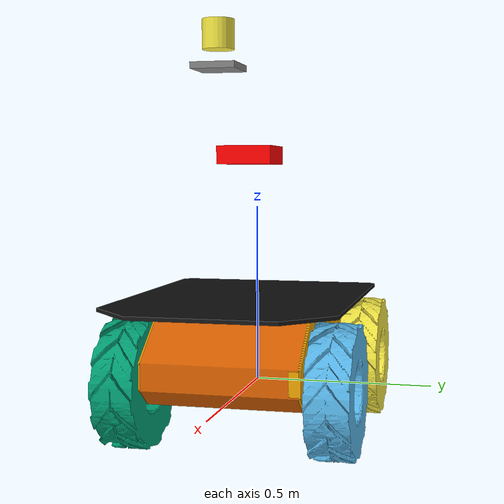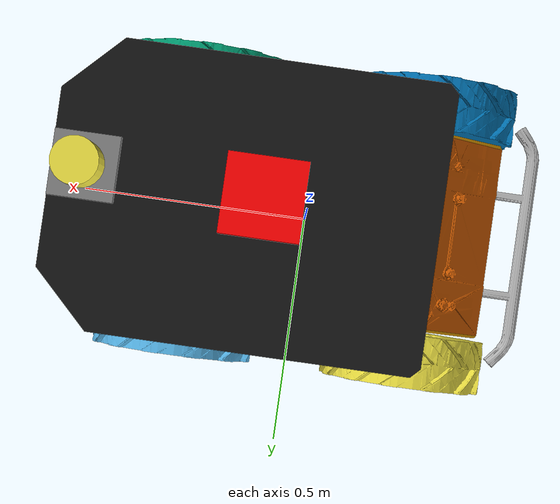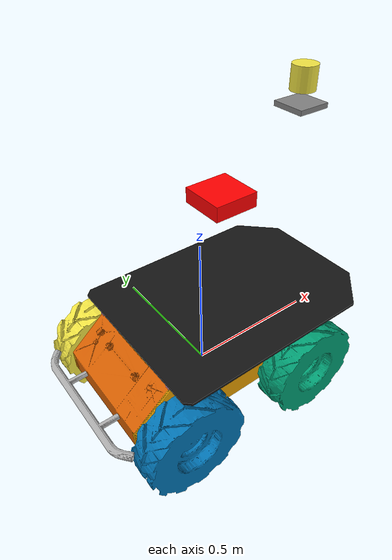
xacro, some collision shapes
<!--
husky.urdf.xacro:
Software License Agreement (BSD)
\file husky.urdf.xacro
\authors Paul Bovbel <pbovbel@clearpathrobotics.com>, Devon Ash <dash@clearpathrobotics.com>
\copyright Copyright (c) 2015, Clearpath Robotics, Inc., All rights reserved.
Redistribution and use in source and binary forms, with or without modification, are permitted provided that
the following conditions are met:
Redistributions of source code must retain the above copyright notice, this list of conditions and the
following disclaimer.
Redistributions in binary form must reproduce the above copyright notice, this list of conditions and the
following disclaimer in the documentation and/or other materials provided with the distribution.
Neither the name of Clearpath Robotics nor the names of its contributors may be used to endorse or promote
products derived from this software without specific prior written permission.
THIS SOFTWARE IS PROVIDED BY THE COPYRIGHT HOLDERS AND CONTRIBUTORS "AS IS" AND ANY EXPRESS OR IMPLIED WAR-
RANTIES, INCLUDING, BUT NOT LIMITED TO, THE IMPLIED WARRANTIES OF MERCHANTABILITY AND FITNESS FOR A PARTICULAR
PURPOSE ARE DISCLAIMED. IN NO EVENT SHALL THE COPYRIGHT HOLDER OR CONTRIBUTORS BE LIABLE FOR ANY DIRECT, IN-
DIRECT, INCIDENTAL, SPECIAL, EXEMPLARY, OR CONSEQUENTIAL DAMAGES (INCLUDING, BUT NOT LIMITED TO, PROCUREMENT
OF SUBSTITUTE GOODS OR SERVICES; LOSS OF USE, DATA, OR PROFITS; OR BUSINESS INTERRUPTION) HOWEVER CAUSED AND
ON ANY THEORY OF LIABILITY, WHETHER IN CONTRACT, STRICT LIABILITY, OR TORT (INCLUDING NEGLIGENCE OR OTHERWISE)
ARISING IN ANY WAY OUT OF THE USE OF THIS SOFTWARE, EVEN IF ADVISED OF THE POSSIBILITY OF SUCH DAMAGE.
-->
<?xml version="1.0"?>
<robot name="husky" xmlns:xacro="http://ros.org/wiki/xacro">

  <!-- Argument for controlling odom TF publishing -->
  <xacro:arg name="publish_odom_tf" default="true"/>

  <!-- 1) Husky 추가 -->
  <xacro:include filename="$(find husky_description)/urdf/husky.urdf.xacro" />

  <!-- 2) OS1-32 LiDAR 추가 -->
  <xacro:include filename="$(find ouster_description)/urdf/OS1-32.urdf.xacro"/>
  <xacro:OS1-32 parent="top_plate_link" topic_points="/gazebo_time/points" topic_imu="/gazebo_time/imu">
    <!-- front_wheel 쪽으로 이동 + 60cm 위로 -->
    <origin xyz="0.3 0.0 0.6" rpy="0 0 0"/>
  </xacro:OS1-32>

  <!-- 3) GPS 추가 -->
  <xacro:include filename="$(find robot_description)/urdf/gps.urdf.xacro"/>
</robot>

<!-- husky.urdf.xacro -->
<robot name="husky" xmlns:xacro="http://ros.org/wiki/xacro">
  <!-- IMU Link -->

  <!-- LMS1XX Laser Primary and Secondary -->

  <!-- UST10 Laser Primary  and Secondary -->

  <!-- Velodyne LiDAR Primary and Secondary -->

  <!-- Realsense Camera Primary and Secondary -->

  <!-- BlackflyS Camera Primary and Secondary -->

  <!-- Bumper Extension -->
  <xacro:property name="husky_front_bumper_extend"  value="$(optenv HUSKY_FRONT_BUMPER_EXTEND 0)" />
  <xacro:property name="husky_rear_bumper_extend"   value="$(optenv HUSKY_REAR_BUMPER_EXTEND 0)" />

  <!-- Height of the sensor arch in mm.  Must be either 510 or 300 -->

  <!-- Extras -->
  <xacro:arg name="robot_namespace" default="$(optenv ROBOT_NAMESPACE /)" />
  <xacro:arg name="urdf_extras"     default="$(optenv HUSKY_URDF_EXTRAS empty.urdf)" />
  <xacro:arg name="cpr_urdf_extras" default="$(optenv CPR_URDF_EXTRAS empty.urdf)" />

  <!-- OutdoorNav -->
  <xacro:arg name="outdoornav_enabled"       default="$(optenv OUTDOORNAV_ENABLED 0)" />
  <xacro:arg name="outdoornav_configuration" default="$(optenv OUTDOORNAV_CONFIGURATION standard)" />

  <!-- Included URDF/XACRO Files -->
  <xacro:include filename="$(find husky_description)/urdf/decorations.urdf.xacro" />
  <xacro:include filename="$(find husky_description)/urdf/wheel.urdf.xacro" />

  <xacro:property name="M_PI" value="3.14159"/>

  <!-- Base Size -->
  <xacro:property name="base_x_size" value="0.98740000" />
  <xacro:property name="base_y_size" value="0.57090000" />
  <xacro:property name="base_z_size" value="0.24750000" />

  <!-- Wheel Mounting Positions -->
  <xacro:property name="wheelbase" value="0.5120" />
  <xacro:property name="track" value="0.555" />
  <xacro:property name="wheel_vertical_offset" value="0.03282" />

  <!-- Wheel Properties -->
  <xacro:property name="wheel_length" value="0.1143" />
  <xacro:property name="wheel_radius" value="0.1651" />

  <!-- Base link is the center of the robot's bottom plate -->
  <link name="base_link">
    <visual>
      <origin xyz="0 0 0" rpy="0 0 0" />
      <geometry>
        <mesh filename="package://husky_description/meshes/base_link.dae" />
      </geometry>
    </visual>
    <collision>
      <origin xyz="${( husky_front_bumper_extend - husky_rear_bumper_extend ) / 2.0} 0 ${base_z_size/4}" rpy="0 0 0" />
      <geometry>
        <box size="${ base_x_size + husky_front_bumper_extend + husky_rear_bumper_extend } ${base_y_size} ${base_z_size/2}"/>
      </geometry>
    </collision>
    <collision>
      <origin xyz="0 0 ${base_z_size*3/4-0.01}" rpy="0 0 0" />
      <geometry>
        <box size="${base_x_size*4/5} ${base_y_size} ${base_z_size/2-0.02}"/>
      </geometry>
    </collision>
  </link>

  <!-- Base footprint is on the ground under the robot -->

  <!-- Inertial link stores the robot's inertial information -->

  <!-- Husky wheel macros -->
  <xacro:husky_wheel wheel_prefix="front_left">
    <origin xyz="${wheelbase/2} ${track/2} ${wheel_vertical_offset}" rpy="0 0 0" />
  </xacro:husky_wheel>
  <xacro:husky_wheel wheel_prefix="front_right">
    <origin xyz="${wheelbase/2} ${-track/2} ${wheel_vertical_offset}" rpy="0 0 0" />
  </xacro:husky_wheel>
  <xacro:husky_wheel wheel_prefix="rear_left">
    <origin xyz="${-wheelbase/2} ${track/2} ${wheel_vertical_offset}" rpy="0 0 0" />
  </xacro:husky_wheel>
  <xacro:husky_wheel wheel_prefix="rear_right">
    <origin xyz="${-wheelbase/2} ${-track/2} ${wheel_vertical_offset}" rpy="0 0 0" />
  </xacro:husky_wheel>

  <!-- Husky Decorations -->
  <xacro:husky_decorate />

  <!--
    Add the main sensor arch if the user has specifically enabled it, or if a sensor
    requires it for mounting
  -->

  <!--
      IMU Link: Standard location to add an IMU (i.e. UM7 or Microstrain)
  -->

  <!--
    SICK LMS1XX Priamry and Secondary Laser Scans
  -->

  <!--
    Hokuyo UST10 Primary and Secondary Laser Scans
  -->

  <!-- Intel Realsense Primary and Secondary -->

  <!-- BlackflyS Camera Primary and Secondary -->

  <!--
    Velodyne 3D LiDAR Primary and Secondary
  -->

  <!-- OutdoorNav URDF Config -->

  <!-- Optional custom includes. -->

  <!-- Optional for Clearpath internal softwares -->

</robot>

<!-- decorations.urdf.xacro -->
<robot name="husky_decorations" xmlns:xacro="http://ros.org/wiki/xacro">

  <xacro:macro name="husky_decorate">

    <!-- Spawn Husky chassis -->
    <link name="top_chassis_link">
      <visual>
        <origin xyz="0 0 0" rpy="0 0 0" />
        <geometry>
          <mesh filename="package://husky_description/meshes/top_chassis.dae" />
        </geometry>
      </visual>
    </link>

    <!-- Attach chassis to the robot -->
    <joint name="top_chassis_joint" type="fixed">
      <parent link="base_link" />
      <child link="top_chassis_link" />
    </joint>

    <!-- Spawn user rails -->
    <link name="user_rail_link">
      <visual>
        <geometry>
          <mesh filename="package://husky_description/meshes/user_rail.dae" />
        </geometry>
      </visual>
    </link>

    <!-- Attach user rails to base link -->
    <joint name="user_rail" type="fixed">
      <origin xyz="0.272 0 0.245" rpy="0 0 0" />
      <parent link="base_link" />
      <child link="user_rail_link" />
    </joint>

    <!-- Spawn rear bumper link -->
    <link name="rear_bumper_link">
      <visual>
        <geometry>
          <mesh filename="package://husky_description/meshes/bumper.dae" />
        </geometry>
      </visual>
    </link>

    <!-- Attach rear bumper -->
    <joint name="rear_bumper" type="fixed">
      <origin xyz="-0.48 0 0.091" rpy="0 0 ${M_PI}" />
      <parent link="base_link" />
      <child link="rear_bumper_link" />
    </joint>

    <xacro:if value="$(optenv HUSKY_TOP_PLATE_ENABLED true)">
      <!-- Spawn the top plate -->
      <link name="top_plate_link">
        <visual>
          <origin xyz="0 0 0" rpy="0 0 0" />
          <geometry>
            <mesh filename="package://husky_description/meshes/top_plate.dae" />
          </geometry>
        </visual>
        <collision>
          <origin xyz="0 0 0" rpy="0 0 0"/>
          <geometry>
            <mesh filename="package://husky_description/meshes/top_plate.stl" />
          </geometry>
        </collision>
        <collision>
          <!-- Extra collision tag for widgets on top plate -->
          <geometry>
            <box size="0.32 0.41 0.09" rpy="0 0 0"/>
          </geometry>
        </collision>
      </link>

      <!-- Attach top plate -->
      <joint name="top_plate_joint" type="fixed">
        <parent link="base_link" />
        <child link="top_plate_link"/>
        <origin xyz="0.0812 0 0.245" rpy="0 0 0"/>
      </joint>
    </xacro:if>

  </xacro:macro>

</robot>

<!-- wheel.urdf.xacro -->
<robot xmlns:xacro="http://ros.org/wiki/xacro" name="husky_wheel">

	<xacro:macro name="husky_wheel" params="wheel_prefix *joint_pose">
		<link name="${wheel_prefix}_wheel_link">
			<inertial>
				<mass value="2.637" />
				<origin xyz="0 0 0" />
				<inertia  ixx="0.02467" ixy="0" ixz="0" iyy="0.04411" iyz="0" izz="0.02467" />
			</inertial>
			<visual>
				<origin xyz="0 0 0" rpy="0 0 0" />
				<geometry>
					<mesh filename="package://husky_description/meshes/wheel.dae" />
				</geometry>
			</visual>
			<collision>
				<origin xyz="0 0 0" rpy="${M_PI/2} 0 0" />
				<geometry>
					<cylinder length="${wheel_length}" radius="${wheel_radius}" />
				</geometry>
			</collision>
		</link>

		<gazebo reference="${wheel_prefix}_wheel_link">
			<mu1 value="1.0"/>
			<mu2 value="1.0"/>
			<kp value="10000000.0" />
			<kd value="1.0" />
			<fdir1 value="1 0 0"/>
		</gazebo>

		<joint name="${wheel_prefix}_wheel" type="continuous">
			<parent link="base_link"/>
			<child link="${wheel_prefix}_wheel_link"/>
			<xacro:insert_block name="joint_pose"/>
			<axis xyz="0 1 0" rpy="0 0 0" />
		</joint>

		<!-- Transmission 제거: Gazebo Skid Steer Plugin이 직접 바퀴 제어 -->
		<!-- 실제 로봇과 동일하게 좌/우 2개 속도로 4개 바퀴 제어 -->

	</xacro:macro>
</robot>

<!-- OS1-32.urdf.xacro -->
<robot xmlns:xacro="http://www.ros.org/wiki/xacro" name="OS1-32">
  <xacro:property name="M_PI" value="3.1415926535897931"/>
  <xacro:macro name="OS1-32" params="*origin parent:=base_link name:=os_sensor topic_points:=/ouster/points topic_imu:=/ouster/imu hz:=10 lasers:=32 samples:=1024 min_range:=0.3 max_range:=75.0 noise:=0.008 min_angle:=-${M_PI} max_angle:=${M_PI} lidar_link:=os_lidar imu_link:=os_imu vfov_min:=-.393 vfov_max:=.393">

    <joint name="${name}_mount_joint" type="fixed">
      <xacro:insert_block name="origin"/>
      <parent link="${parent}"/>
      <child link="${name}_base_link"/>
    </joint>

    <link name="${name}_base_link"/>

    <joint name="${name}_base_to_baseplate" type="fixed">
      <parent link="${name}_base_link"/>
      <child link="${name}_baseplate"/>
      <origin xyz="0 0 0.008"/>
    </joint>

    <link name="${name}_baseplate">
      <visual>
        <geometry>
          <box size="0.112 0.112 0.016"/>
        </geometry>
        <material name="silver">
          <color rgba="0.5 0.5 0.5 1.0"/>
        </material>
      </visual>
      <collision>
        <geometry>
          <box size="0.112 0.112 0.016"/>
        </geometry>
      </collision>
    </link>

    <joint name="${name}_baseplate_to_body" type="fixed">
      <parent link="${name}_baseplate"/>
      <child link="${name}"/>
      <origin xyz="0 0 0.042" rpy="0 0 0"/>
    </joint>

    <link name="${name}">
      <inertial>
         <mass value="0.33"/>
         <origin xyz="0 0 0.0365" rpy="0 0 0"/>
         <inertia ixx="0.000241148" ixy="0" ixz="0"
          iyy="0.000241148" iyz="0" izz="0.000264"/>
      </inertial>
      <collision name="base_collision">
         <origin xyz="0 0 0.0365" rpy="0 0 0"/>
         <geometry>
 	        <cylinder radius="0.04" length="0.073"/>
         </geometry>
      </collision>
      <visual name="base_visual">
         <origin xyz="0 0 0.0" rpy="0 0 1.5707"/>
         <geometry>
	         <mesh filename="package://robot_description/meshes/os1_64.dae"/>
         </geometry>
      </visual>
    </link>

    <link name="${imu_link}"/>

    <link name="${lidar_link}"/>

    <joint name="${name}_imu_link_joint" type="fixed">
      <parent link="${name}"/>
      <child link="${imu_link}"/>
      <origin xyz="0.006253 -0.011775 0.007645" rpy="0 0 0"/>
    </joint>
    <gazebo reference="${imu_link}">
    </gazebo>

    <joint name="${name}_lidar_link_joint" type="fixed">
      <parent link="${name}"/>
      <child link="${lidar_link}"/>
      <origin xyz="0.0 0.0 0.03618" rpy="0 0 0"/>
    </joint>

    <!-- Gazebo requires the ouster_gazebo_plugins package -->
    <gazebo reference="${name}">
        <sensor type="ray" name="${name}-OS1-32">
          <pose>0 0 0 0 0 0</pose>
          <visualize>false</visualize>
          <update_rate>${hz}</update_rate>
          <ray>
            <scan>
              <horizontal>
                <samples>${samples}</samples>
                <resolution>1</resolution>
                <min_angle>${min_angle}</min_angle>
                <max_angle>${max_angle}</max_angle>
              </horizontal>
              <vertical>
                <samples>${lasers}</samples>
                <resolution>1</resolution>
                <min_angle>${vfov_min}</min_angle>
                <max_angle>${vfov_max}</max_angle>
              </vertical>
            </scan>
            <range>
              <min>${min_range}</min>
              <max>${max_range}</max>
              <resolution>0.03</resolution>
            </range>
          </ray>
          <plugin name="gazebo_ros_laser_controller" filename="libgazebo_ros_ouster_laser.so">
            <topicName>/gazebo_time/points</topicName>
            <frameName>${lidar_link}</frameName>
            <min_range>${min_range}</min_range>
            <max_range>${max_range}</max_range>
            <gaussianNoise>${noise}</gaussianNoise>
          </plugin>
        </sensor>
    </gazebo>

    <!-- IMU -->
    <gazebo reference="${imu_link}">
      <gravity>true</gravity>
      <sensor name="imu_sensor" type="imu">
        <always_on>true</always_on>
        <update_rate>100</update_rate>
        <visualize>true</visualize>
        <plugin filename="libgazebo_ros_imu_sensor.so" name="imu_plugin">
          <topicName>/gazebo_time/imu</topicName>
          <bodyName>${imu_link}</bodyName>
          <updateRateHZ>100.0</updateRateHZ>
          <gaussianNoise>0.0</gaussianNoise>
          <xyzOffset>0 0 0</xyzOffset>
          <rpyOffset>0 0 0</rpyOffset>
          <frameName>${imu_link}</frameName>
          <initialOrientationAsReference>false</initialOrientationAsReference>
        </plugin>
        <pose>0 0 0 0 0 0</pose>
      </sensor>
    </gazebo>

  </xacro:macro>
</robot>

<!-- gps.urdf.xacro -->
<robot xmlns:xacro="http://www.ros.org/wiki/xacro">

  <!-- GPS Link -->
  <link name="gps_link">
    <inertial>
      <mass value="0.01"/>
      <origin xyz="0 0 0" rpy="0 0 0"/>
      <inertia ixx="0.00001" ixy="0" ixz="0"
               iyy="0.00001" iyz="0" izz="0.00001"/>
    </inertial>
    <visual>
      <origin xyz="0 0 0" rpy="0 0 0"/>
      <geometry>
        <box size="0.15 0.15 0.05"/>
      </geometry>
      <material name="gps_red">
        <color rgba="1.0 0.0 0.0 1.0"/>
      </material>
    </visual>
    <collision>
      <origin xyz="0 0 0" rpy="0 0 0"/>
      <geometry>
        <box size="0.15 0.15 0.05"/>
      </geometry>
    </collision>
  </link>

  <!-- GPS Joint: top_plate_link에서 60cm 위로 -->
  <joint name="gps_joint" type="fixed">
    <origin xyz="0.0 0.0 0.4" rpy="0 0 0"/>
    <parent link="top_plate_link"/>
    <child link="gps_link"/>
  </joint>

  <!-- Gazebo GPS material -->
  <gazebo reference="gps_link">
    <material>Gazebo/Red</material>
  </gazebo>

  <!-- Gazebo GPS Plugin -->
  <gazebo>
    <plugin name="gazebo_ros_gps" filename="libhector_gazebo_ros_gps.so">
      <updateRate>10.0</updateRate>
      <bodyName>gps_link</bodyName>
      <frameId>gps_link</frameId>
      <topicName>/gazebo_time/gps</topicName>
      <velocityTopicName>/ublox/fix_velocity</velocityTopicName>
      <referenceLatitude>35.84617083648474</referenceLatitude>
      <referenceLongitude>127.13446738445664</referenceLongitude>
      <referenceHeading>0.0</referenceHeading>
      <referenceAltitude>100.0</referenceAltitude>
      <drift>0.0001 0.0001 0.0001</drift>
      <gaussianNoise>0.001 0.001 0.001</gaussianNoise>
      <velocityDrift>0.0001 0.0001 0.0001</velocityDrift>
      <velocityGaussianNoise>0.01 0.01 0.01</velocityGaussianNoise>
      <verbose>false</verbose>
    </plugin>
  </gazebo>

</robot>
